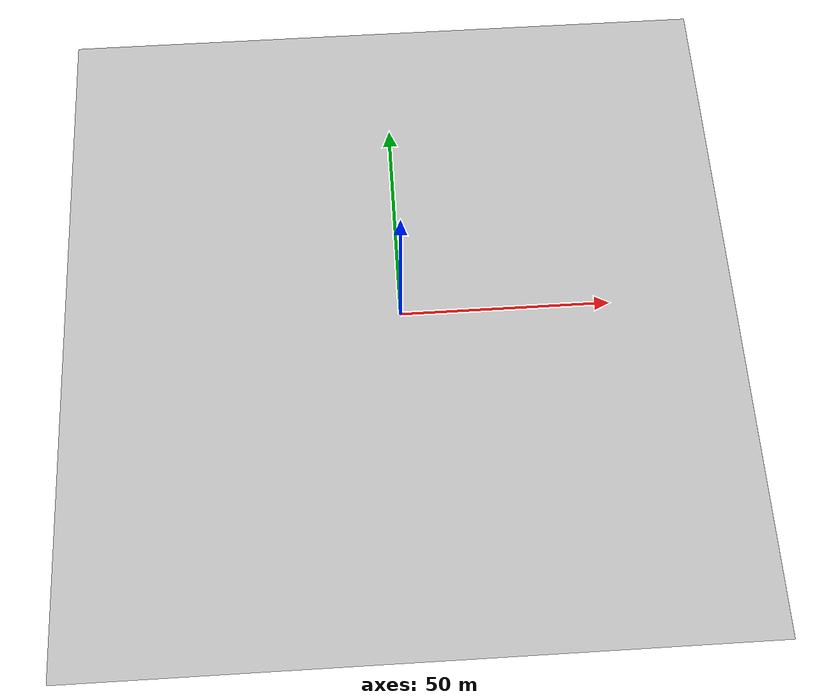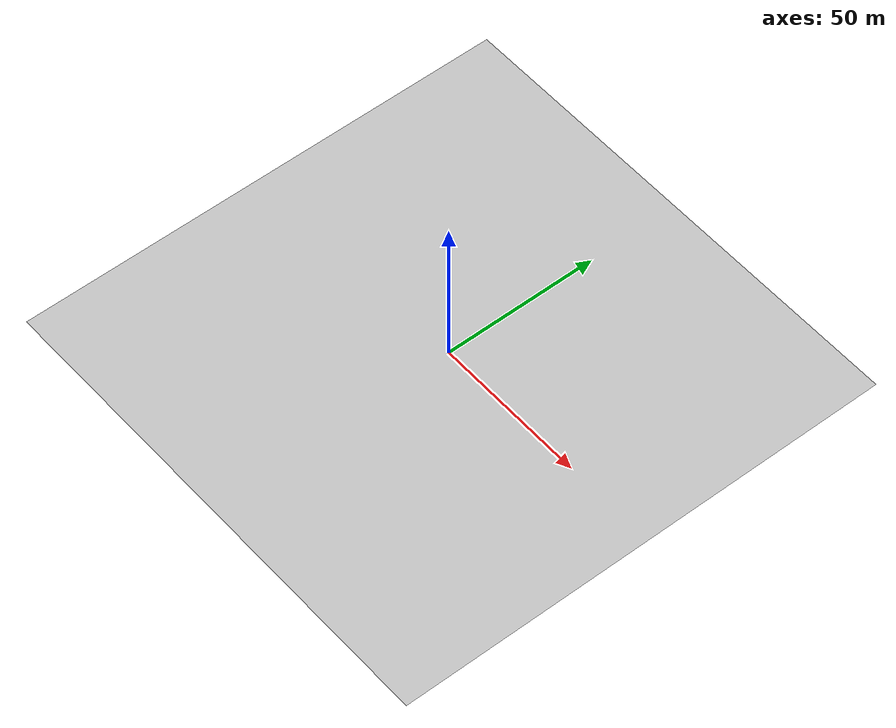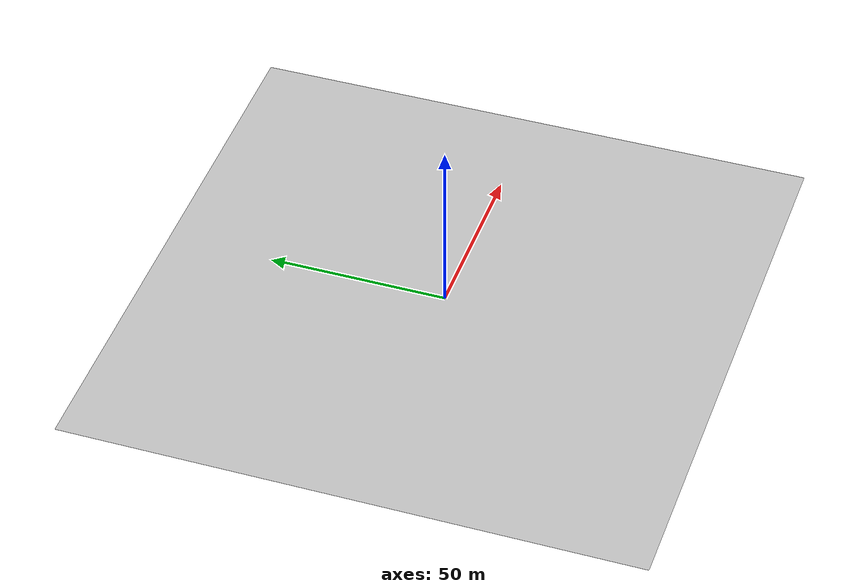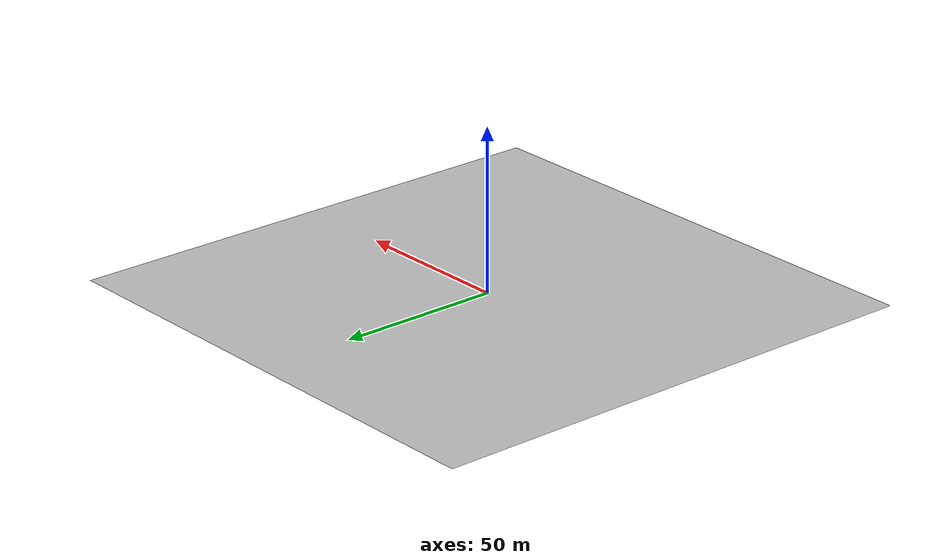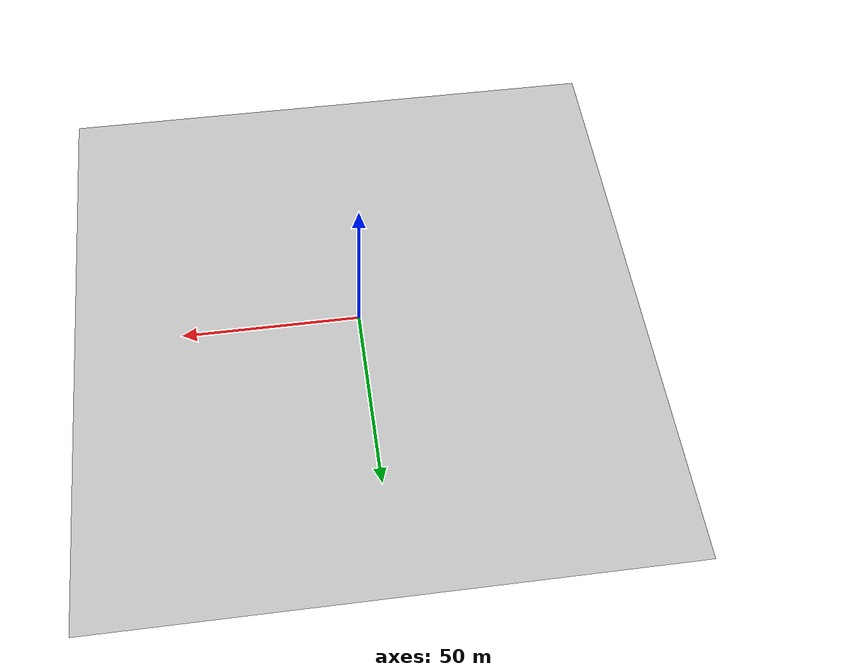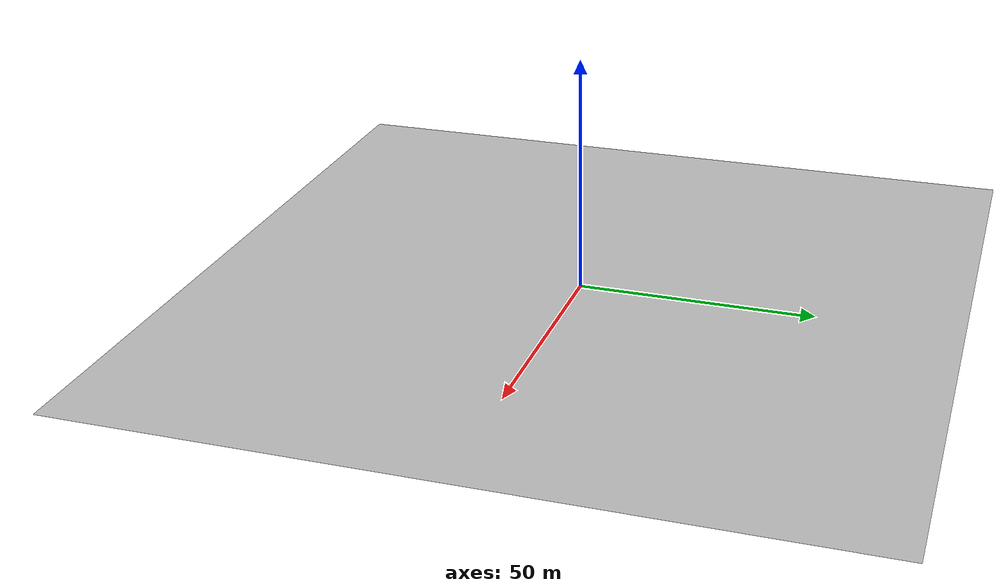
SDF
<?xml version="1.0"?>
<sdf version="1.4">
  <world name="default">
    <include>
      <uri>model://sun</uri>
    </include>
    <light name='user_directional_light_1' type='directional'>
      <pose frame=''>54.1561 57.215 1 0 -0 0</pose>
      <diffuse>0.5 0.5 0.5 1</diffuse>
      <specular>0.1 0.1 0.1 1</specular>
      <direction>0.1 0.1 -0.9</direction>
      <attenuation>
        <range>20</range>
        <constant>0.5</constant>
        <linear>0.01</linear>
        <quadratic>0.001</quadratic>
      </attenuation>
      <cast_shadows>1</cast_shadows>
    </light>
    <light name='user_directional_light_2' type='directional'>
      <pose frame=''>-55.4959 57.26 1 0 -0 0</pose>
      <diffuse>0.5 0.5 0.5 1</diffuse>
      <specular>0.1 0.1 0.1 1</specular>
      <direction>0.1 0.1 -0.9</direction>
      <attenuation>
        <range>20</range>
        <constant>0.5</constant>
        <linear>0.01</linear>
        <quadratic>0.001</quadratic>
      </attenuation>
      <cast_shadows>1</cast_shadows>
    </light>
    <light name='user_directional_light_3' type='directional'>
      <pose frame=''>-55.4676 -51.8931 1 0 -0 0</pose>
      <diffuse>0.5 0.5 0.5 1</diffuse>
      <specular>0.1 0.1 0.1 1</specular>
      <direction>0.1 0.1 -0.9</direction>
      <attenuation>
        <range>20</range>
        <constant>0.5</constant>
        <linear>0.01</linear>
        <quadratic>0.001</quadratic>
      </attenuation>
      <cast_shadows>1</cast_shadows>
    </light>
    <light name='user_directional_light_4' type='directional'>
      <pose frame=''>51.4947 -58.1384 1 0 -0 0</pose>
      <diffuse>0.5 0.5 0.5 1</diffuse>
      <specular>0.1 0.1 0.1 1</specular>
      <direction>0.1 0.1 -0.9</direction>
      <attenuation>
        <range>20</range>
        <constant>0.5</constant>
        <linear>0.01</linear>
        <quadratic>0.001</quadratic>
      </attenuation>
      <cast_shadows>1</cast_shadows>
    </light>
    <model name="airport">
      <pose>0 0 0 1.5708 0 0</pose>
      <static>true</static>
      <link name="body">
        <collision name="collision">
          <geometry>
            <plane>
              <normal>0 0 1</normal>
              <size>100 100</size>
            </plane>
          </geometry>
          <surface>
            <friction>
              <ode>
                <mu>100</mu>
                <mu2>50</mu2>
              </ode>
            </friction>
          </surface>
        </collision>
        <visual name="visual">
          <geometry>
            <mesh>
              <uri>model://airport.dae</uri>
              <scale>0.1 0.1 0.1</scale>
            </mesh>
          </geometry>
        </visual>
      </link>
    </model>
  </world>
</sdf>
